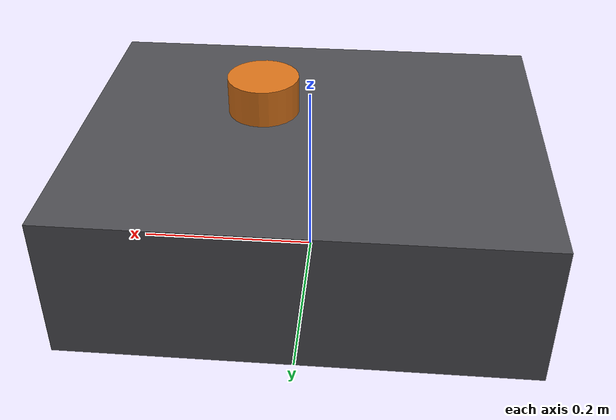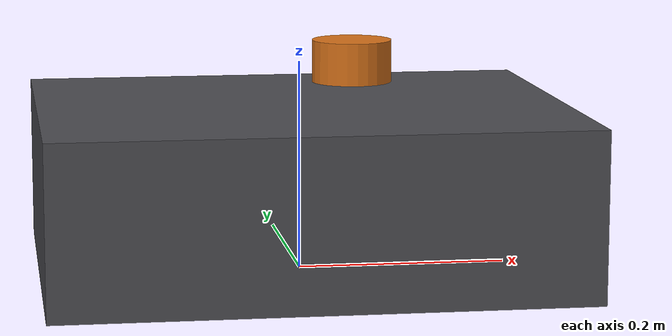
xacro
<?xml version="1.0"?>
<robot name="robocorea_sim" xmlns:xacro="http://www.ros.org/wiki/xacro">

  <xacro:property name="body_len"  value="0.50"/>
  <xacro:property name="body_wid"  value="0.40"/>
  <xacro:property name="body_hgt"  value="0.16"/>
  <xacro:property name="body_mass" value="15.0"/>
  <xacro:property name="laser_z"   value="${body_hgt + 0.04}"/>

  <material name="rc_grey"><color rgba="0.30 0.30 0.32 1.0"/></material>
  <material name="rc_accent"><color rgba="0.85 0.45 0.10 1.0"/></material>

  <link name="base_footprint"/>
  <joint name="base_footprint_to_base_link" type="fixed">
    <parent link="base_footprint"/>
    <child  link="base_link"/>
    <origin xyz="0 0 0" rpy="0 0 0"/>
  </joint>

  <link name="base_link">
    <visual>
      <origin xyz="0 0 ${body_hgt/2.0}" rpy="0 0 0"/>
      <geometry><box size="${body_len} ${body_wid} ${body_hgt}"/></geometry>
      <material name="rc_grey"/>
    </visual>
    <collision>
      <origin xyz="0 0 ${body_hgt/2.0}" rpy="0 0 0"/>
      <geometry><box size="${body_len} ${body_wid} ${body_hgt}"/></geometry>
    </collision>
    <inertial>
      <origin xyz="0 0 ${body_hgt/2.0}" rpy="0 0 0"/>
      <mass value="${body_mass}"/>
      <inertia
        ixx="${body_mass/12.0*(body_wid*body_wid + body_hgt*body_hgt)}" ixy="0" ixz="0"
        iyy="${body_mass/12.0*(body_len*body_len + body_hgt*body_hgt)}" iyz="0"
        izz="${body_mass/12.0*(body_len*body_len + body_wid*body_wid)}"/>
    </inertial>
  </link>

  <link name="base_laser">
    <visual>
      <geometry><cylinder radius="0.038" length="0.04"/></geometry>
      <material name="rc_accent"/>
    </visual>
  </link>
  <joint name="base_link_to_base_laser" type="fixed">
    <parent link="base_link"/>
    <child  link="base_laser"/>
    <origin xyz="0.05 0.0 ${laser_z}" rpy="0 0 0"/>
  </joint>

  <gazebo reference="base_link"><material>Gazebo/Grey</material></gazebo>
  <gazebo reference="base_laser"><material>Gazebo/Orange</material></gazebo>

  <!-- Kinematic skid-steer drive + wheel odometry (ZED stand-in). -->
  <gazebo>
    <plugin name="planar_move" filename="libgazebo_ros_planar_move.so">
      <ros>
        <namespace>/</namespace>
        <remapping>cmd_vel:=cmd_vel</remapping>
        <remapping>odom:=odom</remapping>
      </ros>
      <update_rate>50</update_rate>
      <publish_rate>50</publish_rate>
      <odometry_frame>odom</odometry_frame>
      <robot_base_frame>base_footprint</robot_base_frame>
      <publish_odom>true</publish_odom>
      <!-- In sim this IS the odom source (no ZED), so it owns odom->base_footprint. -->
      <publish_odom_tf>true</publish_odom_tf>
      <covariance_x>0.0004</covariance_x>
      <covariance_y>0.0004</covariance_y>
      <covariance_yaw>0.02</covariance_yaw>
    </plugin>
  </gazebo>

  <!-- 2D lidar (Slamtec stand-in) -> /scan in base_laser. -->
  <gazebo reference="base_laser">
    <sensor name="lidar" type="ray">
      <always_on>true</always_on>
      <visualize>true</visualize>
      <update_rate>10</update_rate>
      <ray>
        <scan>
          <horizontal>
            <samples>720</samples>
            <resolution>1.0</resolution>
            <min_angle>-3.14159</min_angle>
            <max_angle>3.14159</max_angle>
          </horizontal>
        </scan>
        <range>
          <min>0.15</min>
          <max>12.0</max>
          <resolution>0.01</resolution>
        </range>
        <noise>
          <type>gaussian</type>
          <mean>0.0</mean>
          <stddev>0.01</stddev>
        </noise>
      </ray>
      <plugin name="lidar_ros" filename="libgazebo_ros_ray_sensor.so">
        <ros>
          <namespace>/</namespace>
          <remapping>~/out:=scan</remapping>
        </ros>
        <output_type>sensor_msgs/LaserScan</output_type>
        <frame_name>base_laser</frame_name>
      </plugin>
    </sensor>
  </gazebo>

</robot>
